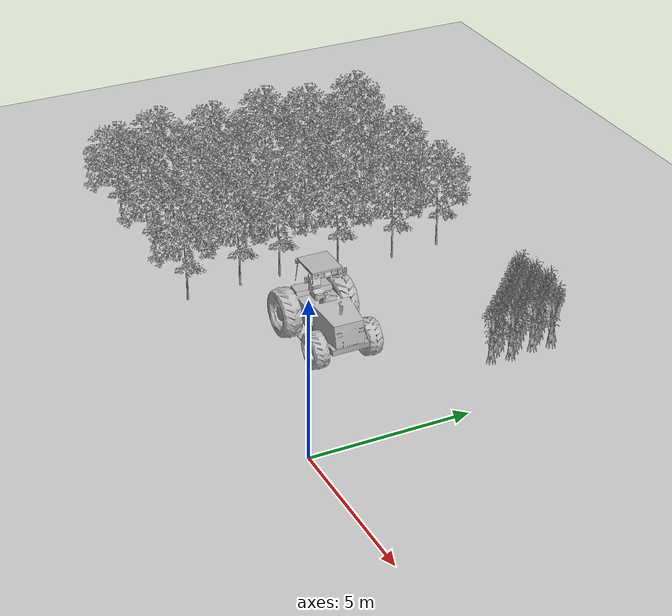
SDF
<sdf version="1.7">
 <world name="farmland_world">
  <model name="ground_plane">
   <static>1</static>
   <link name="link">
    <collision name="collision">
     <geometry><plane><normal>0 0 1</normal><size>40.0 40.0</size></plane></geometry>
     <surface><friction><ode><mu>100</mu><mu2>50</mu2></ode></friction></surface>
    </collision>
    <visual name="visual">
     <cast_shadows>0</cast_shadows>
     <geometry><plane><normal>0 0 1</normal><size>40.0 40.0</size></plane></geometry>
     <material>
      <script><uri>file://media/materials/scripts/gazebo.material</uri><name>Gazebo/Grey</name></script>
     </material>
    </visual>
   </link>
  </model>
  <model name="tree_0_4">
   <static>1</static>
   <link name="link">
    <collision name="collision">
     <geometry><mesh><uri>model://Birch_tree/birch_tree_5p.obj</uri><scale>1 1 1</scale></mesh></geometry>
     <surface><friction><ode><mu>100</mu><mu2>50</mu2></ode></friction></surface>
    </collision>
    <visual name="visual">
     <geometry><mesh><uri>model://Birch_tree/birch_tree_5p.obj</uri><scale>1 1 1</scale></mesh></geometry>
    </visual>
   </link>
   <pose>-15.06561841178248 9.022281137910282 0 0 0 0</pose>
  </model>
  <model name="tree_0_5">
   <static>1</static>
   <link name="link">
    <collision name="collision">
     <geometry><mesh><uri>model://Birch_tree/birch_tree_5p.obj</uri><scale>1 1 1</scale></mesh></geometry>
     <surface><friction><ode><mu>100</mu><mu2>50</mu2></ode></friction></surface>
    </collision>
    <visual name="visual">
     <geometry><mesh><uri>model://Birch_tree/birch_tree_5p.obj</uri><scale>1 1 1</scale></mesh></geometry>
    </visual>
   </link>
   <pose>-14.782993091199312 7.034720524604587 0 0 0 0</pose>
  </model>
  <model name="tree_0_6">
   <static>1</static>
   <link name="link">
    <collision name="collision">
     <geometry><mesh><uri>model://Birch_tree/birch_tree_5p.obj</uri><scale>1 1 1</scale></mesh></geometry>
     <surface><friction><ode><mu>100</mu><mu2>50</mu2></ode></friction></surface>
    </collision>
    <visual name="visual">
     <geometry><mesh><uri>model://Birch_tree/birch_tree_5p.obj</uri><scale>1 1 1</scale></mesh></geometry>
    </visual>
   </link>
   <pose>-15.25957002248026 5.612003605544245 0 0 0 0</pose>
  </model>
  <model name="tree_0_7">
   <static>1</static>
   <link name="link">
    <collision name="collision">
     <geometry><mesh><uri>model://Birch_tree/birch_tree_5p.obj</uri><scale>1 1 1</scale></mesh></geometry>
     <surface><friction><ode><mu>100</mu><mu2>50</mu2></ode></friction></surface>
    </collision>
    <visual name="visual">
     <geometry><mesh><uri>model://Birch_tree/birch_tree_5p.obj</uri><scale>1 1 1</scale></mesh></geometry>
    </visual>
   </link>
   <pose>-14.854777682466423 3.5006724442776855 0 0 0 0</pose>
  </model>
  <model name="tree_0_8">
   <static>1</static>
   <link name="link">
    <collision name="collision">
     <geometry><mesh><uri>model://Birch_tree/birch_tree_5p.obj</uri><scale>1 1 1</scale></mesh></geometry>
     <surface><friction><ode><mu>100</mu><mu2>50</mu2></ode></friction></surface>
    </collision>
    <visual name="visual">
     <geometry><mesh><uri>model://Birch_tree/birch_tree_5p.obj</uri><scale>1 1 1</scale></mesh></geometry>
    </visual>
   </link>
   <pose>-15.268603431191494 1.6723369577771203 0 0 0 0</pose>
  </model>
  <model name="tree_0_9">
   <static>1</static>
   <link name="link">
    <collision name="collision">
     <geometry><mesh><uri>model://Birch_tree/birch_tree_5p.obj</uri><scale>1 1 1</scale></mesh></geometry>
     <surface><friction><ode><mu>100</mu><mu2>50</mu2></ode></friction></surface>
    </collision>
    <visual name="visual">
     <geometry><mesh><uri>model://Birch_tree/birch_tree_5p.obj</uri><scale>1 1 1</scale></mesh></geometry>
    </visual>
   </link>
   <pose>-14.709556604108974 0.0029621043253607038 0 0 0 0</pose>
  </model>
  <model name="tree_0_14">
   <static>1</static>
   <link name="link">
    <collision name="collision">
     <geometry><mesh><uri>model://Birch_tree/birch_tree_5p.obj</uri><scale>1 1 1</scale></mesh></geometry>
     <surface><friction><ode><mu>100</mu><mu2>50</mu2></ode></friction></surface>
    </collision>
    <visual name="visual">
     <geometry><mesh><uri>model://Birch_tree/birch_tree_5p.obj</uri><scale>1 1 1</scale></mesh></geometry>
    </visual>
   </link>
   <pose>-11.818177014905816 8.940150235905131 0 0 0 0</pose>
  </model>
  <model name="tree_0_15">
   <static>1</static>
   <link name="link">
    <collision name="collision">
     <geometry><mesh><uri>model://Birch_tree/birch_tree_5p.obj</uri><scale>1 1 1</scale></mesh></geometry>
     <surface><friction><ode><mu>100</mu><mu2>50</mu2></ode></friction></surface>
    </collision>
    <visual name="visual">
     <geometry><mesh><uri>model://Birch_tree/birch_tree_5p.obj</uri><scale>1 1 1</scale></mesh></geometry>
    </visual>
   </link>
   <pose>-11.904515960097234 7.170478906004172 0 0 0 0</pose>
  </model>
  <model name="tree_0_16">
   <static>1</static>
   <link name="link">
    <collision name="collision">
     <geometry><mesh><uri>model://Birch_tree/birch_tree_5p.obj</uri><scale>1 1 1</scale></mesh></geometry>
     <surface><friction><ode><mu>100</mu><mu2>50</mu2></ode></friction></surface>
    </collision>
    <visual name="visual">
     <geometry><mesh><uri>model://Birch_tree/birch_tree_5p.obj</uri><scale>1 1 1</scale></mesh></geometry>
    </visual>
   </link>
   <pose>-11.758908887040334 5.487855164628342 0 0 0 0</pose>
  </model>
  <model name="tree_0_17">
   <static>1</static>
   <link name="link">
    <collision name="collision">
     <geometry><mesh><uri>model://Birch_tree/birch_tree_5p.obj</uri><scale>1 1 1</scale></mesh></geometry>
     <surface><friction><ode><mu>100</mu><mu2>50</mu2></ode></friction></surface>
    </collision>
    <visual name="visual">
     <geometry><mesh><uri>model://Birch_tree/birch_tree_5p.obj</uri><scale>1 1 1</scale></mesh></geometry>
    </visual>
   </link>
   <pose>-12.234738455365026 3.447915089518777 0 0 0 0</pose>
  </model>
  <model name="tree_0_18">
   <static>1</static>
   <link name="link">
    <collision name="collision">
     <geometry><mesh><uri>model://Birch_tree/birch_tree_5p.obj</uri><scale>1 1 1</scale></mesh></geometry>
     <surface><friction><ode><mu>100</mu><mu2>50</mu2></ode></friction></surface>
    </collision>
    <visual name="visual">
     <geometry><mesh><uri>model://Birch_tree/birch_tree_5p.obj</uri><scale>1 1 1</scale></mesh></geometry>
    </visual>
   </link>
   <pose>-11.885335388926457 1.8447125004237512 0 0 0 0</pose>
  </model>
  <model name="tree_0_19">
   <static>1</static>
   <link name="link">
    <collision name="collision">
     <geometry><mesh><uri>model://Birch_tree/birch_tree_5p.obj</uri><scale>1 1 1</scale></mesh></geometry>
     <surface><friction><ode><mu>100</mu><mu2>50</mu2></ode></friction></surface>
    </collision>
    <visual name="visual">
     <geometry><mesh><uri>model://Birch_tree/birch_tree_5p.obj</uri><scale>1 1 1</scale></mesh></geometry>
    </visual>
   </link>
   <pose>-11.908766050019784 0.14275515385399704 0 0 0 0</pose>
  </model>
  <model name="tree_0_24">
   <static>1</static>
   <link name="link">
    <collision name="collision">
     <geometry><mesh><uri>model://Birch_tree/birch_tree_5p.obj</uri><scale>1 1 1</scale></mesh></geometry>
     <surface><friction><ode><mu>100</mu><mu2>50</mu2></ode></friction></surface>
    </collision>
    <visual name="visual">
     <geometry><mesh><uri>model://Birch_tree/birch_tree_5p.obj</uri><scale>1 1 1</scale></mesh></geometry>
    </visual>
   </link>
   <pose>-8.893458730529527 8.90594391590294 0 0 0 0</pose>
  </model>
  <model name="tree_0_25">
   <static>1</static>
   <link name="link">
    <collision name="collision">
     <geometry><mesh><uri>model://Birch_tree/birch_tree_5p.obj</uri><scale>1 1 1</scale></mesh></geometry>
     <surface><friction><ode><mu>100</mu><mu2>50</mu2></ode></friction></surface>
    </collision>
    <visual name="visual">
     <geometry><mesh><uri>model://Birch_tree/birch_tree_5p.obj</uri><scale>1 1 1</scale></mesh></geometry>
    </visual>
   </link>
   <pose>-8.76903385322635 7.17981956686878 0 0 0 0</pose>
  </model>
  <model name="tree_0_26">
   <static>1</static>
   <link name="link">
    <collision name="collision">
     <geometry><mesh><uri>model://Birch_tree/birch_tree_5p.obj</uri><scale>1 1 1</scale></mesh></geometry>
     <surface><friction><ode><mu>100</mu><mu2>50</mu2></ode></friction></surface>
    </collision>
    <visual name="visual">
     <geometry><mesh><uri>model://Birch_tree/birch_tree_5p.obj</uri><scale>1 1 1</scale></mesh></geometry>
    </visual>
   </link>
   <pose>-9.02159091520577 5.328958924342956 0 0 0 0</pose>
  </model>
  <model name="tree_0_27">
   <static>1</static>
   <link name="link">
    <collision name="collision">
     <geometry><mesh><uri>model://Birch_tree/birch_tree_5p.obj</uri><scale>1 1 1</scale></mesh></geometry>
     <surface><friction><ode><mu>100</mu><mu2>50</mu2></ode></friction></surface>
    </collision>
    <visual name="visual">
     <geometry><mesh><uri>model://Birch_tree/birch_tree_5p.obj</uri><scale>1 1 1</scale></mesh></geometry>
    </visual>
   </link>
   <pose>-9.229629016639317 3.353880451471138 0 0 0 0</pose>
  </model>
  <model name="tree_0_28">
   <static>1</static>
   <link name="link">
    <collision name="collision">
     <geometry><mesh><uri>model://Birch_tree/birch_tree_5p.obj</uri><scale>1 1 1</scale></mesh></geometry>
     <surface><friction><ode><mu>100</mu><mu2>50</mu2></ode></friction></surface>
    </collision>
    <visual name="visual">
     <geometry><mesh><uri>model://Birch_tree/birch_tree_5p.obj</uri><scale>1 1 1</scale></mesh></geometry>
    </visual>
   </link>
   <pose>-9.262095150295508 1.983846602006953 0 0 0 0</pose>
  </model>
  <model name="tree_0_29">
   <static>1</static>
   <link name="link">
    <collision name="collision">
     <geometry><mesh><uri>model://Birch_tree/birch_tree_5p.obj</uri><scale>1 1 1</scale></mesh></geometry>
     <surface><friction><ode><mu>100</mu><mu2>50</mu2></ode></friction></surface>
    </collision>
    <visual name="visual">
     <geometry><mesh><uri>model://Birch_tree/birch_tree_5p.obj</uri><scale>1 1 1</scale></mesh></geometry>
    </visual>
   </link>
   <pose>-9.122310819781465 0.13560254653077516 0 0 0 0</pose>
  </model>
  <model name="tree_2_27">
   <static>1</static>
   <link name="link">
    <collision name="collision">
     <geometry><mesh><uri>model://Corn/corn_5p.obj</uri><scale>1 1 1</scale></mesh></geometry>
     <surface><friction><ode><mu>100</mu><mu2>50</mu2></ode></friction></surface>
    </collision>
    <visual name="visual">
     <geometry><mesh><uri>model://Corn/corn_5p.obj</uri><scale>1 1 1</scale></mesh></geometry>
    </visual>
   </link>
   <pose>-1.9385875824229 6.89350841962269 0 0 0 0</pose>
  </model>
  <model name="tree_2_28">
   <static>1</static>
   <link name="link">
    <collision name="collision">
     <geometry><mesh><uri>model://Corn/corn_5p.obj</uri><scale>1 1 1</scale></mesh></geometry>
     <surface><friction><ode><mu>100</mu><mu2>50</mu2></ode></friction></surface>
    </collision>
    <visual name="visual">
     <geometry><mesh><uri>model://Corn/corn_5p.obj</uri><scale>1 1 1</scale></mesh></geometry>
    </visual>
   </link>
   <pose>-2.220224593131699 7.2007456545716195 0 0 0 0</pose>
  </model>
  <model name="tree_2_29">
   <static>1</static>
   <link name="link">
    <collision name="collision">
     <geometry><mesh><uri>model://Corn/corn_5p.obj</uri><scale>1 1 1</scale></mesh></geometry>
     <surface><friction><ode><mu>100</mu><mu2>50</mu2></ode></friction></surface>
    </collision>
    <visual name="visual">
     <geometry><mesh><uri>model://Corn/corn_5p.obj</uri><scale>1 1 1</scale></mesh></geometry>
    </visual>
   </link>
   <pose>-2.4305670892160838 7.474998492783781 0 0 0 0</pose>
  </model>
  <model name="tree_2_30">
   <static>1</static>
   <link name="link">
    <collision name="collision">
     <geometry><mesh><uri>model://Corn/corn_5p.obj</uri><scale>1 1 1</scale></mesh></geometry>
     <surface><friction><ode><mu>100</mu><mu2>50</mu2></ode></friction></surface>
    </collision>
    <visual name="visual">
     <geometry><mesh><uri>model://Corn/corn_5p.obj</uri><scale>1 1 1</scale></mesh></geometry>
    </visual>
   </link>
   <pose>-2.6919640654998505 7.66897582270655 0 0 0 0</pose>
  </model>
  <model name="tree_2_31">
   <static>1</static>
   <link name="link">
    <collision name="collision">
     <geometry><mesh><uri>model://Corn/corn_5p.obj</uri><scale>1 1 1</scale></mesh></geometry>
     <surface><friction><ode><mu>100</mu><mu2>50</mu2></ode></friction></surface>
    </collision>
    <visual name="visual">
     <geometry><mesh><uri>model://Corn/corn_5p.obj</uri><scale>1 1 1</scale></mesh></geometry>
    </visual>
   </link>
   <pose>-2.9442619392600347 7.979076516224764 0 0 0 0</pose>
  </model>
  <model name="tree_2_32">
   <static>1</static>
   <link name="link">
    <collision name="collision">
     <geometry><mesh><uri>model://Corn/corn_5p.obj</uri><scale>1 1 1</scale></mesh></geometry>
     <surface><friction><ode><mu>100</mu><mu2>50</mu2></ode></friction></surface>
    </collision>
    <visual name="visual">
     <geometry><mesh><uri>model://Corn/corn_5p.obj</uri><scale>1 1 1</scale></mesh></geometry>
    </visual>
   </link>
   <pose>-3.2151404302134425 8.222938740331585 0 0 0 0</pose>
  </model>
  <model name="tree_2_33">
   <static>1</static>
   <link name="link">
    <collision name="collision">
     <geometry><mesh><uri>model://Corn/corn_5p.obj</uri><scale>1 1 1</scale></mesh></geometry>
     <surface><friction><ode><mu>100</mu><mu2>50</mu2></ode></friction></surface>
    </collision>
    <visual name="visual">
     <geometry><mesh><uri>model://Corn/corn_5p.obj</uri><scale>1 1 1</scale></mesh></geometry>
    </visual>
   </link>
   <pose>-3.4327551017801023 8.440921463432785 0 0 0 0</pose>
  </model>
  <model name="tree_2_34">
   <static>1</static>
   <link name="link">
    <collision name="collision">
     <geometry><mesh><uri>model://Corn/corn_5p.obj</uri><scale>1 1 1</scale></mesh></geometry>
     <surface><friction><ode><mu>100</mu><mu2>50</mu2></ode></friction></surface>
    </collision>
    <visual name="visual">
     <geometry><mesh><uri>model://Corn/corn_5p.obj</uri><scale>1 1 1</scale></mesh></geometry>
    </visual>
   </link>
   <pose>-3.7646030159834987 8.731638564686193 0 0 0 0</pose>
  </model>
  <model name="tree_2_35">
   <static>1</static>
   <link name="link">
    <collision name="collision">
     <geometry><mesh><uri>model://Corn/corn_5p.obj</uri><scale>1 1 1</scale></mesh></geometry>
     <surface><friction><ode><mu>100</mu><mu2>50</mu2></ode></friction></surface>
    </collision>
    <visual name="visual">
     <geometry><mesh><uri>model://Corn/corn_5p.obj</uri><scale>1 1 1</scale></mesh></geometry>
    </visual>
   </link>
   <pose>-3.9890235115320576 8.971573891248743 0 0 0 0</pose>
  </model>
  <model name="tree_2_36">
   <static>1</static>
   <link name="link">
    <collision name="collision">
     <geometry><mesh><uri>model://Corn/corn_5p.obj</uri><scale>1 1 1</scale></mesh></geometry>
     <surface><friction><ode><mu>100</mu><mu2>50</mu2></ode></friction></surface>
    </collision>
    <visual name="visual">
     <geometry><mesh><uri>model://Corn/corn_5p.obj</uri><scale>1 1 1</scale></mesh></geometry>
    </visual>
   </link>
   <pose>-4.272325903632959 9.196737850460817 0 0 0 0</pose>
  </model>
  <model name="tree_2_71">
   <static>1</static>
   <link name="link">
    <collision name="collision">
     <geometry><mesh><uri>model://Corn/corn_5p.obj</uri><scale>1 1 1</scale></mesh></geometry>
     <surface><friction><ode><mu>100</mu><mu2>50</mu2></ode></friction></surface>
    </collision>
    <visual name="visual">
     <geometry><mesh><uri>model://Corn/corn_5p.obj</uri><scale>1 1 1</scale></mesh></geometry>
    </visual>
   </link>
   <pose>-1.9326052859764078 8.961348407023076 0 0 0 0</pose>
  </model>
  <model name="tree_2_72">
   <static>1</static>
   <link name="link">
    <collision name="collision">
     <geometry><mesh><uri>model://Corn/corn_5p.obj</uri><scale>1 1 1</scale></mesh></geometry>
     <surface><friction><ode><mu>100</mu><mu2>50</mu2></ode></friction></surface>
    </collision>
    <visual name="visual">
     <geometry><mesh><uri>model://Corn/corn_5p.obj</uri><scale>1 1 1</scale></mesh></geometry>
    </visual>
   </link>
   <pose>-2.204825191083508 9.170665078944248 0 0 0 0</pose>
  </model>
  <model name="tree_2_268">
   <static>1</static>
   <link name="link">
    <collision name="collision">
     <geometry><mesh><uri>model://Corn/corn_5p.obj</uri><scale>1 1 1</scale></mesh></geometry>
     <surface><friction><ode><mu>100</mu><mu2>50</mu2></ode></friction></surface>
    </collision>
    <visual name="visual">
     <geometry><mesh><uri>model://Corn/corn_5p.obj</uri><scale>1 1 1</scale></mesh></geometry>
    </visual>
   </link>
   <pose>-1.8596667691923867 7.510513568658549 0 0 0 0</pose>
  </model>
  <model name="tree_2_269">
   <static>1</static>
   <link name="link">
    <collision name="collision">
     <geometry><mesh><uri>model://Corn/corn_5p.obj</uri><scale>1 1 1</scale></mesh></geometry>
     <surface><friction><ode><mu>100</mu><mu2>50</mu2></ode></friction></surface>
    </collision>
    <visual name="visual">
     <geometry><mesh><uri>model://Corn/corn_5p.obj</uri><scale>1 1 1</scale></mesh></geometry>
    </visual>
   </link>
   <pose>-2.113001085522601 7.770500280937659 0 0 0 0</pose>
  </model>
  <model name="tree_2_270">
   <static>1</static>
   <link name="link">
    <collision name="collision">
     <geometry><mesh><uri>model://Corn/corn_5p.obj</uri><scale>1 1 1</scale></mesh></geometry>
     <surface><friction><ode><mu>100</mu><mu2>50</mu2></ode></friction></surface>
    </collision>
    <visual name="visual">
     <geometry><mesh><uri>model://Corn/corn_5p.obj</uri><scale>1 1 1</scale></mesh></geometry>
    </visual>
   </link>
   <pose>-2.3190301044850523 8.030308148128446 0 0 0 0</pose>
  </model>
  <model name="tree_2_271">
   <static>1</static>
   <link name="link">
    <collision name="collision">
     <geometry><mesh><uri>model://Corn/corn_5p.obj</uri><scale>1 1 1</scale></mesh></geometry>
     <surface><friction><ode><mu>100</mu><mu2>50</mu2></ode></friction></surface>
    </collision>
    <visual name="visual">
     <geometry><mesh><uri>model://Corn/corn_5p.obj</uri><scale>1 1 1</scale></mesh></geometry>
    </visual>
   </link>
   <pose>-2.6379913921564064 8.311916040981457 0 0 0 0</pose>
  </model>
  <model name="tree_2_272">
   <static>1</static>
   <link name="link">
    <collision name="collision">
     <geometry><mesh><uri>model://Corn/corn_5p.obj</uri><scale>1 1 1</scale></mesh></geometry>
     <surface><friction><ode><mu>100</mu><mu2>50</mu2></ode></friction></surface>
    </collision>
    <visual name="visual">
     <geometry><mesh><uri>model://Corn/corn_5p.obj</uri><scale>1 1 1</scale></mesh></geometry>
    </visual>
   </link>
   <pose>-2.9054066958991847 8.554369436570202 0 0 0 0</pose>
  </model>
  <model name="tree_2_273">
   <static>1</static>
   <link name="link">
    <collision name="collision">
     <geometry><mesh><uri>model://Corn/corn_5p.obj</uri><scale>1 1 1</scale></mesh></geometry>
     <surface><friction><ode><mu>100</mu><mu2>50</mu2></ode></friction></surface>
    </collision>
    <visual name="visual">
     <geometry><mesh><uri>model://Corn/corn_5p.obj</uri><scale>1 1 1</scale></mesh></geometry>
    </visual>
   </link>
   <pose>-3.1289566565296307 8.799744706841281 0 0 0 0</pose>
  </model>
  <model name="tree_2_274">
   <static>1</static>
   <link name="link">
    <collision name="collision">
     <geometry><mesh><uri>model://Corn/corn_5p.obj</uri><scale>1 1 1</scale></mesh></geometry>
     <surface><friction><ode><mu>100</mu><mu2>50</mu2></ode></friction></surface>
    </collision>
    <visual name="visual">
     <geometry><mesh><uri>model://Corn/corn_5p.obj</uri><scale>1 1 1</scale></mesh></geometry>
    </visual>
   </link>
   <pose>-3.389417178521938 9.044282210952296 0 0 0 0</pose>
  </model>
  <model name="tree_2_275">
   <static>1</static>
   <link name="link">
    <collision name="collision">
     <geometry><mesh><uri>model://Corn/corn_5p.obj</uri><scale>1 1 1</scale></mesh></geometry>
     <surface><friction><ode><mu>100</mu><mu2>50</mu2></ode></friction></surface>
    </collision>
    <visual name="visual">
     <geometry><mesh><uri>model://Corn/corn_5p.obj</uri><scale>1 1 1</scale></mesh></geometry>
    </visual>
   </link>
   <pose>-3.689526970407026 9.296848096347865 0 0 0 0</pose>
  </model>
  <model name="tree_2_310">
   <static>1</static>
   <link name="link">
    <collision name="collision">
     <geometry><mesh><uri>model://Corn/corn_5p.obj</uri><scale>1 1 1</scale></mesh></geometry>
     <surface><friction><ode><mu>100</mu><mu2>50</mu2></ode></friction></surface>
    </collision>
    <visual name="visual">
     <geometry><mesh><uri>model://Corn/corn_5p.obj</uri><scale>1 1 1</scale></mesh></geometry>
    </visual>
   </link>
   <pose>-1.9996320166025037 8.34347116203124 0 0 0 0</pose>
  </model>
  <model name="tree_2_311">
   <static>1</static>
   <link name="link">
    <collision name="collision">
     <geometry><mesh><uri>model://Corn/corn_5p.obj</uri><scale>1 1 1</scale></mesh></geometry>
     <surface><friction><ode><mu>100</mu><mu2>50</mu2></ode></friction></surface>
    </collision>
    <visual name="visual">
     <geometry><mesh><uri>model://Corn/corn_5p.obj</uri><scale>1 1 1</scale></mesh></geometry>
    </visual>
   </link>
   <pose>-2.297493657245436 8.651869647369066 0 0 0 0</pose>
  </model>
  <model name="tree_2_312">
   <static>1</static>
   <link name="link">
    <collision name="collision">
     <geometry><mesh><uri>model://Corn/corn_5p.obj</uri><scale>1 1 1</scale></mesh></geometry>
     <surface><friction><ode><mu>100</mu><mu2>50</mu2></ode></friction></surface>
    </collision>
    <visual name="visual">
     <geometry><mesh><uri>model://Corn/corn_5p.obj</uri><scale>1 1 1</scale></mesh></geometry>
    </visual>
   </link>
   <pose>-2.4972545396265797 8.89167292659257 0 0 0 0</pose>
  </model>
  <model name="tree_2_313">
   <static>1</static>
   <link name="link">
    <collision name="collision">
     <geometry><mesh><uri>model://Corn/corn_5p.obj</uri><scale>1 1 1</scale></mesh></geometry>
     <surface><friction><ode><mu>100</mu><mu2>50</mu2></ode></friction></surface>
    </collision>
    <visual name="visual">
     <geometry><mesh><uri>model://Corn/corn_5p.obj</uri><scale>1 1 1</scale></mesh></geometry>
    </visual>
   </link>
   <pose>-2.820286051408861 9.152286211043874 0 0 0 0</pose>
  </model>
  <model name="tree_2_314">
   <static>1</static>
   <link name="link">
    <collision name="collision">
     <geometry><mesh><uri>model://Corn/corn_5p.obj</uri><scale>1 1 1</scale></mesh></geometry>
     <surface><friction><ode><mu>100</mu><mu2>50</mu2></ode></friction></surface>
    </collision>
    <visual name="visual">
     <geometry><mesh><uri>model://Corn/corn_5p.obj</uri><scale>1 1 1</scale></mesh></geometry>
    </visual>
   </link>
   <pose>-3.046331322981229 9.413534020932731 0 0 0 0</pose>
  </model>
  <model name="tree_4_0">
   <static>1</static>
   <link name="link">
    <collision name="collision">
     <geometry><mesh><uri>model://Tractor/tractor.obj</uri><scale>1 1 1</scale></mesh></geometry>
     <surface><friction><ode><mu>100</mu><mu2>50</mu2></ode></friction></surface>
    </collision>
    <visual name="visual">
     <geometry><mesh><uri>model://Tractor/tractor.obj</uri><scale>1 1 1</scale></mesh></geometry>
    </visual>
   </link>
   <pose>-5.0 3.0 0 0 0 0</pose>
  </model>
 </world>
</sdf>
